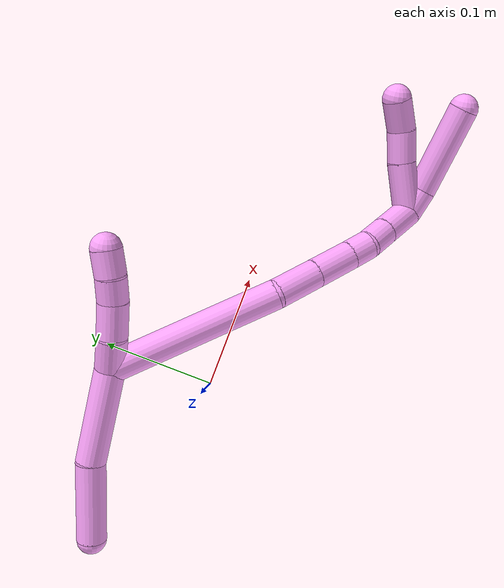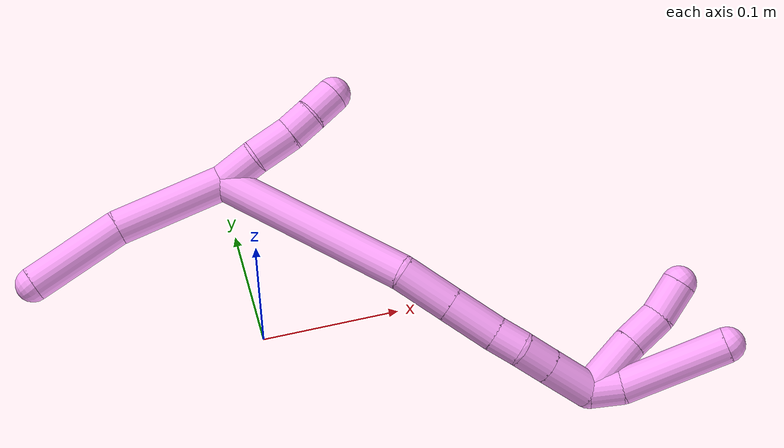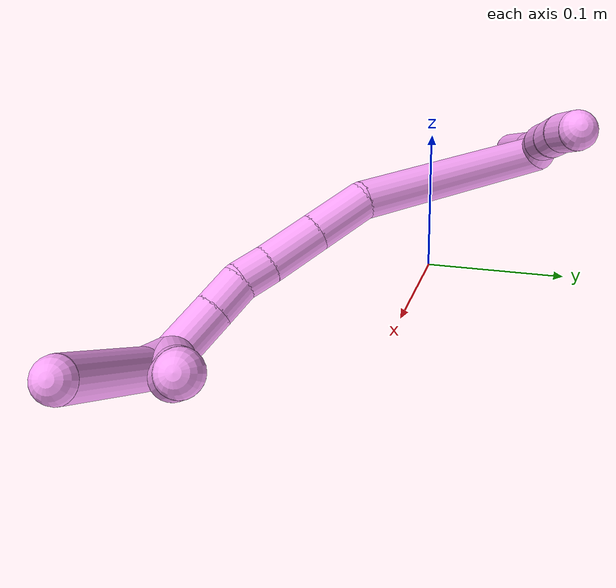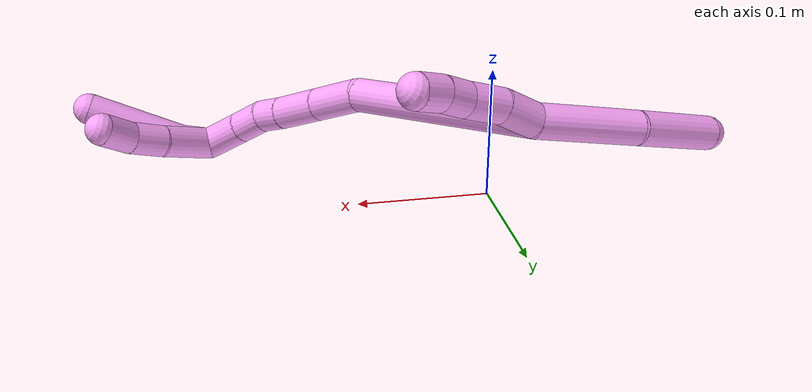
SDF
<sdf version="1.7">
 <world name="default">
  <model name="4">
   <static>0</static>
   <link name="4">
    <collision name="collision-cylinder-e_1_2_8">
     <pose>-0.01032 -0.007888 -0.038082 2.93736 -0.259387 -1.80968</pose>
     <geometry><cylinder><radius>0.0125</radius><length>0.080472</length></cylinder></geometry>
     <surface>
      <friction><ode><mu>1.16</mu><mu2>1.16</mu2><slip1>0</slip1><slip2>0</slip2></ode></friction>
      <contact><ode><kp>1e+06</kp><kd>1</kd><max_vel>0</max_vel><min_depth>0.001</min_depth></ode></contact>
     </surface>
    </collision>
    <visual name="visual-cylinder-e_1_2_8">
     <pose>-0.01032 -0.007888 -0.038082 2.93736 -0.259387 -1.80968</pose>
     <geometry><cylinder><radius>0.0125</radius><length>0.080472</length></cylinder></geometry>
     <material><ambient>1 0.65098 0.996078 1</ambient></material>
    </visual>
    <collision name="collision-cylinder-e_2_8_6">
     <pose>-0.022958 -0.024687 -0.109686 2.88177 -0.066734 -0.500274</pose>
     <geometry><cylinder><radius>0.0125</radius><length>0.069528</length></cylinder></geometry>
     <surface>
      <friction><ode><mu>1.16</mu><mu2>1.16</mu2><slip1>0</slip1><slip2>0</slip2></ode></friction>
      <contact><ode><kp>1e+06</kp><kd>1</kd><max_vel>0</max_vel><min_depth>0.001</min_depth></ode></contact>
     </surface>
    </collision>
    <visual name="visual-cylinder-e_2_8_6">
     <pose>-0.022958 -0.024687 -0.109686 2.88177 -0.066734 -0.500274</pose>
     <geometry><cylinder><radius>0.0125</radius><length>0.069528</length></cylinder></geometry>
     <material><ambient>1 0.65098 0.996078 1</ambient></material>
    </visual>
    <collision name="collision-cylinder-e_1_2_9">
     <pose>0.000276 -0.000278 0.014526 0.019121 0.018961 0.000181</pose>
     <geometry><cylinder><radius>0.0125</radius><length>0.029063</length></cylinder></geometry>
     <surface>
      <friction><ode><mu>1.16</mu><mu2>1.16</mu2><slip1>0</slip1><slip2>0</slip2></ode></friction>
      <contact><ode><kp>1e+06</kp><kd>1</kd><max_vel>0</max_vel><min_depth>0.001</min_depth></ode></contact>
     </surface>
    </collision>
    <visual name="visual-cylinder-e_1_2_9">
     <pose>0.000276 -0.000278 0.014526 0.019121 0.018961 0.000181</pose>
     <geometry><cylinder><radius>0.0125</radius><length>0.029063</length></cylinder></geometry>
     <material><ambient>1 0.65098 0.996078 1</ambient></material>
    </visual>
    <collision name="collision-cylinder-e_2_9_10">
     <pose>0.00154 0.002048 0.043388 -0.179643 0.067769 -0.006106</pose>
     <geometry><cylinder><radius>0.0125</radius><length>0.029207</length></cylinder></geometry>
     <surface>
      <friction><ode><mu>1.16</mu><mu2>1.16</mu2><slip1>0</slip1><slip2>0</slip2></ode></friction>
      <contact><ode><kp>1e+06</kp><kd>1</kd><max_vel>0</max_vel><min_depth>0.001</min_depth></ode></contact>
     </surface>
    </collision>
    <visual name="visual-cylinder-e_2_9_10">
     <pose>0.00154 0.002048 0.043388 -0.179643 0.067769 -0.006106</pose>
     <geometry><cylinder><radius>0.0125</radius><length>0.029207</length></cylinder></geometry>
     <material><ambient>1 0.65098 0.996078 1</ambient></material>
    </visual>
    <collision name="collision-cylinder-e_3_10_11">
     <pose>0.001978 0.006268 0.067711 -0.160508 -0.054407 0.004377</pose>
     <geometry><cylinder><radius>0.0125</radius><length>0.020266</length></cylinder></geometry>
     <surface>
      <friction><ode><mu>1.16</mu><mu2>1.16</mu2><slip1>0</slip1><slip2>0</slip2></ode></friction>
      <contact><ode><kp>1e+06</kp><kd>1</kd><max_vel>0</max_vel><min_depth>0.001</min_depth></ode></contact>
     </surface>
    </collision>
    <visual name="visual-cylinder-e_3_10_11">
     <pose>0.001978 0.006268 0.067711 -0.160508 -0.054407 0.004377</pose>
     <geometry><cylinder><radius>0.0125</radius><length>0.020266</length></cylinder></geometry>
     <material><ambient>1 0.65098 0.996078 1</ambient></material>
    </visual>
    <collision name="collision-cylinder-e_4_11_5">
     <pose>0.000551 0.011108 0.087898 -0.306058 -0.081726 0.012612</pose>
     <geometry><cylinder><radius>0.0125</radius><length>0.021464</length></cylinder></geometry>
     <surface>
      <friction><ode><mu>1.16</mu><mu2>1.16</mu2><slip1>0</slip1><slip2>0</slip2></ode></friction>
      <contact><ode><kp>1e+06</kp><kd>1</kd><max_vel>0</max_vel><min_depth>0.001</min_depth></ode></contact>
     </surface>
    </collision>
    <visual name="visual-cylinder-e_4_11_5">
     <pose>0.000551 0.011108 0.087898 -0.306058 -0.081726 0.012612</pose>
     <geometry><cylinder><radius>0.0125</radius><length>0.021464</length></cylinder></geometry>
     <material><ambient>1 0.65098 0.996078 1</ambient></material>
    </visual>
    <collision name="collision-cylinder-e_1_2_12">
     <pose>0.063804 -0.015596 0.030914 0.467227 1.07359 0.281337</pose>
     <geometry><cylinder><radius>0.0125</radius><length>0.145188</length></cylinder></geometry>
     <surface>
      <friction><ode><mu>1.16</mu><mu2>1.16</mu2><slip1>0</slip1><slip2>0</slip2></ode></friction>
      <contact><ode><kp>1e+06</kp><kd>1</kd><max_vel>0</max_vel><min_depth>0.001</min_depth></ode></contact>
     </surface>
    </collision>
    <visual name="visual-cylinder-e_1_2_12">
     <pose>0.063804 -0.015596 0.030914 0.467227 1.07359 0.281337</pose>
     <geometry><cylinder><radius>0.0125</radius><length>0.145188</length></cylinder></geometry>
     <material><ambient>1 0.65098 0.996078 1</ambient></material>
    </visual>
    <collision name="collision-cylinder-e_2_12_13">
     <pose>0.146154 -0.030087 0.06773 -0.185097 1.25772 -0.134816</pose>
     <geometry><cylinder><radius>0.0125</radius><length>0.038987</length></cylinder></geometry>
     <surface>
      <friction><ode><mu>1.16</mu><mu2>1.16</mu2><slip1>0</slip1><slip2>0</slip2></ode></friction>
      <contact><ode><kp>1e+06</kp><kd>1</kd><max_vel>0</max_vel><min_depth>0.001</min_depth></ode></contact>
     </surface>
    </collision>
    <visual name="visual-cylinder-e_2_12_13">
     <pose>0.146154 -0.030087 0.06773 -0.185097 1.25772 -0.134816</pose>
     <geometry><cylinder><radius>0.0125</radius><length>0.038987</length></cylinder></geometry>
     <material><ambient>1 0.65098 0.996078 1</ambient></material>
    </visual>
    <collision name="collision-cylinder-e_3_13_14">
     <pose>0.182083 -0.027908 0.079238 -0.189219 1.25347 -0.137214</pose>
     <geometry><cylinder><radius>0.0125</radius><length>0.036593</length></cylinder></geometry>
     <surface>
      <friction><ode><mu>1.16</mu><mu2>1.16</mu2><slip1>0</slip1><slip2>0</slip2></ode></friction>
      <contact><ode><kp>1e+06</kp><kd>1</kd><max_vel>0</max_vel><min_depth>0.001</min_depth></ode></contact>
     </surface>
    </collision>
    <visual name="visual-cylinder-e_3_13_14">
     <pose>0.182083 -0.027908 0.079238 -0.189219 1.25347 -0.137214</pose>
     <geometry><cylinder><radius>0.0125</radius><length>0.036593</length></cylinder></geometry>
     <material><ambient>1 0.65098 0.996078 1</ambient></material>
    </visual>
    <collision name="collision-cylinder-e_4_14_15">
     <pose>0.209027 -0.026605 0.08852 -0.062182 1.20317 -0.042693</pose>
     <geometry><cylinder><radius>0.0125</radius><length>0.020492</length></cylinder></geometry>
     <surface>
      <friction><ode><mu>1.16</mu><mu2>1.16</mu2><slip1>0</slip1><slip2>0</slip2></ode></friction>
      <contact><ode><kp>1e+06</kp><kd>1</kd><max_vel>0</max_vel><min_depth>0.001</min_depth></ode></contact>
     </surface>
    </collision>
    <visual name="visual-cylinder-e_4_14_15">
     <pose>0.209027 -0.026605 0.08852 -0.062182 1.20317 -0.042693</pose>
     <geometry><cylinder><radius>0.0125</radius><length>0.020492</length></cylinder></geometry>
     <material><ambient>1 0.65098 0.996078 1</ambient></material>
    </visual>
    <collision name="collision-cylinder-e_5_15_16">
     <pose>0.229212 -0.022968 0.095627 -0.782114 1.14358 -0.518665</pose>
     <geometry><cylinder><radius>0.0125</radius><length>0.023345</length></cylinder></geometry>
     <surface>
      <friction><ode><mu>1.16</mu><mu2>1.16</mu2><slip1>0</slip1><slip2>0</slip2></ode></friction>
      <contact><ode><kp>1e+06</kp><kd>1</kd><max_vel>0</max_vel><min_depth>0.001</min_depth></ode></contact>
     </surface>
    </collision>
    <visual name="visual-cylinder-e_5_15_16">
     <pose>0.229212 -0.022968 0.095627 -0.782114 1.14358 -0.518665</pose>
     <geometry><cylinder><radius>0.0125</radius><length>0.023345</length></cylinder></geometry>
     <material><ambient>1 0.65098 0.996078 1</ambient></material>
    </visual>
    <collision name="collision-cylinder-e_6_16_1">
     <pose>0.255932 -0.014465 0.104362 -0.7652 1.14224 -0.506078</pose>
     <geometry><cylinder><radius>0.0125</radius><length>0.035396</length></cylinder></geometry>
     <surface>
      <friction><ode><mu>1.16</mu><mu2>1.16</mu2><slip1>0</slip1><slip2>0</slip2></ode></friction>
      <contact><ode><kp>1e+06</kp><kd>1</kd><max_vel>0</max_vel><min_depth>0.001</min_depth></ode></contact>
     </surface>
    </collision>
    <visual name="visual-cylinder-e_6_16_1">
     <pose>0.255932 -0.014465 0.104362 -0.7652 1.14224 -0.506078</pose>
     <geometry><cylinder><radius>0.0125</radius><length>0.035396</length></cylinder></geometry>
     <material><ambient>1 0.65098 0.996078 1</ambient></material>
    </visual>
    <collision name="collision-cylinder-e_1_1_17">
     <pose>0.268753 -0.002547 0.130731 -0.313255 -0.146928 0.023244</pose>
     <geometry><cylinder><radius>0.0125</radius><length>0.044766</length></cylinder></geometry>
     <surface>
      <friction><ode><mu>1.16</mu><mu2>1.16</mu2><slip1>0</slip1><slip2>0</slip2></ode></friction>
      <contact><ode><kp>1e+06</kp><kd>1</kd><max_vel>0</max_vel><min_depth>0.001</min_depth></ode></contact>
     </surface>
    </collision>
    <visual name="visual-cylinder-e_1_1_17">
     <pose>0.268753 -0.002547 0.130731 -0.313255 -0.146928 0.023244</pose>
     <geometry><cylinder><radius>0.0125</radius><length>0.044766</length></cylinder></geometry>
     <material><ambient>1 0.65098 0.996078 1</ambient></material>
    </visual>
    <collision name="collision-cylinder-e_2_17_18">
     <pose>0.264617 0.007532 0.165197 -0.238349 -0.062174 0.007447</pose>
     <geometry><cylinder><radius>0.0125</radius><length>0.027638</length></cylinder></geometry>
     <surface>
      <friction><ode><mu>1.16</mu><mu2>1.16</mu2><slip1>0</slip1><slip2>0</slip2></ode></friction>
      <contact><ode><kp>1e+06</kp><kd>1</kd><max_vel>0</max_vel><min_depth>0.001</min_depth></ode></contact>
     </surface>
    </collision>
    <visual name="visual-cylinder-e_2_17_18">
     <pose>0.264617 0.007532 0.165197 -0.238349 -0.062174 0.007447</pose>
     <geometry><cylinder><radius>0.0125</radius><length>0.027638</length></cylinder></geometry>
     <material><ambient>1 0.65098 0.996078 1</ambient></material>
    </visual>
    <collision name="collision-cylinder-e_3_18_4">
     <pose>0.259396 0.012753 0.191542 -0.15066 -0.321728 0.024492</pose>
     <geometry><cylinder><radius>0.0125</radius><length>0.027596</length></cylinder></geometry>
     <surface>
      <friction><ode><mu>1.16</mu><mu2>1.16</mu2><slip1>0</slip1><slip2>0</slip2></ode></friction>
      <contact><ode><kp>1e+06</kp><kd>1</kd><max_vel>0</max_vel><min_depth>0.001</min_depth></ode></contact>
     </surface>
    </collision>
    <visual name="visual-cylinder-e_3_18_4">
     <pose>0.259396 0.012753 0.191542 -0.15066 -0.321728 0.024492</pose>
     <geometry><cylinder><radius>0.0125</radius><length>0.027596</length></cylinder></geometry>
     <material><ambient>1 0.65098 0.996078 1</ambient></material>
    </visual>
    <collision name="collision-cylinder-e_1_1_19">
     <pose>0.278123 -0.008945 0.11959 -0.042837 0.550235 -0.012094</pose>
     <geometry><cylinder><radius>0.0125</radius><length>0.023306</length></cylinder></geometry>
     <surface>
      <friction><ode><mu>1.16</mu><mu2>1.16</mu2><slip1>0</slip1><slip2>0</slip2></ode></friction>
      <contact><ode><kp>1e+06</kp><kd>1</kd><max_vel>0</max_vel><min_depth>0.001</min_depth></ode></contact>
     </surface>
    </collision>
    <visual name="visual-cylinder-e_1_1_19">
     <pose>0.278123 -0.008945 0.11959 -0.042837 0.550235 -0.012094</pose>
     <geometry><cylinder><radius>0.0125</radius><length>0.023306</length></cylinder></geometry>
     <material><ambient>1 0.65098 0.996078 1</ambient></material>
    </visual>
    <collision name="collision-cylinder-e_2_19_3">
     <pose>0.294302 -0.012004 0.166347 0.094308 0.266135 0.012633</pose>
     <geometry><cylinder><radius>0.0125</radius><length>0.076694</length></cylinder></geometry>
     <surface>
      <friction><ode><mu>1.16</mu><mu2>1.16</mu2><slip1>0</slip1><slip2>0</slip2></ode></friction>
      <contact><ode><kp>1e+06</kp><kd>1</kd><max_vel>0</max_vel><min_depth>0.001</min_depth></ode></contact>
     </surface>
    </collision>
    <visual name="visual-cylinder-e_2_19_3">
     <pose>0.294302 -0.012004 0.166347 0.094308 0.266135 0.012633</pose>
     <geometry><cylinder><radius>0.0125</radius><length>0.076694</length></cylinder></geometry>
     <material><ambient>1 0.65098 0.996078 1</ambient></material>
    </visual>
    <collision name="collision-sphere-3">
     <pose>0.304387 -0.015488 0.203179 0 -0 0</pose>
     <geometry><sphere><radius>0.0125</radius></sphere></geometry>
     <surface>
      <friction><ode><mu>1.16</mu><mu2>1.16</mu2><slip1>0</slip1><slip2>0</slip2></ode></friction>
      <contact><ode><kp>1e+06</kp><kd>1</kd><max_vel>0</max_vel><min_depth>0.001</min_depth></ode></contact>
     </surface>
    </collision>
    <visual name="visual-sphere-3">
     <pose>0.304387 -0.015488 0.203179 0 -0 0</pose>
     <geometry><sphere><radius>0.0125</radius></sphere></geometry>
     <material><ambient>1 0.65098 0.996078 1</ambient></material>
    </visual>
    <collision name="collision-sphere-19">
     <pose>0.284216 -0.00852 0.129514 0 -0 0</pose>
     <geometry><sphere><radius>0.0125</radius></sphere></geometry>
     <surface>
      <friction><ode><mu>1.16</mu><mu2>1.16</mu2><slip1>0</slip1><slip2>0</slip2></ode></friction>
      <contact><ode><kp>1e+06</kp><kd>1</kd><max_vel>0</max_vel><min_depth>0.001</min_depth></ode></contact>
     </surface>
    </collision>
    <visual name="visual-sphere-19">
     <pose>0.284216 -0.00852 0.129514 0 -0 0</pose>
     <geometry><sphere><radius>0.0125</radius></sphere></geometry>
     <material><ambient>1 0.65098 0.996078 1</ambient></material>
    </visual>
    <collision name="collision-sphere-11">
     <pose>0.001427 0.007885 0.077699 0 -0 0</pose>
     <geometry><sphere><radius>0.0125</radius></sphere></geometry>
     <surface>
      <friction><ode><mu>1.16</mu><mu2>1.16</mu2><slip1>0</slip1><slip2>0</slip2></ode></friction>
      <contact><ode><kp>1e+06</kp><kd>1</kd><max_vel>0</max_vel><min_depth>0.001</min_depth></ode></contact>
     </surface>
    </collision>
    <visual name="visual-sphere-11">
     <pose>0.001427 0.007885 0.077699 0 -0 0</pose>
     <geometry><sphere><radius>0.0125</radius></sphere></geometry>
     <material><ambient>1 0.65098 0.996078 1</ambient></material>
    </visual>
    <collision name="collision-sphere-10">
     <pose>0.002529 0.004651 0.057723 0 -0 0</pose>
     <geometry><sphere><radius>0.0125</radius></sphere></geometry>
     <surface>
      <friction><ode><mu>1.16</mu><mu2>1.16</mu2><slip1>0</slip1><slip2>0</slip2></ode></friction>
      <contact><ode><kp>1e+06</kp><kd>1</kd><max_vel>0</max_vel><min_depth>0.001</min_depth></ode></contact>
     </surface>
    </collision>
    <visual name="visual-sphere-10">
     <pose>0.002529 0.004651 0.057723 0 -0 0</pose>
     <geometry><sphere><radius>0.0125</radius></sphere></geometry>
     <material><ambient>1 0.65098 0.996078 1</ambient></material>
    </visual>
    <collision name="collision-sphere-6">
     <pose>-0.025277 -0.033598 -0.143208 0 -0 0</pose>
     <geometry><sphere><radius>0.0125</radius></sphere></geometry>
     <surface>
      <friction><ode><mu>1.16</mu><mu2>1.16</mu2><slip1>0</slip1><slip2>0</slip2></ode></friction>
      <contact><ode><kp>1e+06</kp><kd>1</kd><max_vel>0</max_vel><min_depth>0.001</min_depth></ode></contact>
     </surface>
    </collision>
    <visual name="visual-sphere-6">
     <pose>-0.025277 -0.033598 -0.143208 0 -0 0</pose>
     <geometry><sphere><radius>0.0125</radius></sphere></geometry>
     <material><ambient>1 0.65098 0.996078 1</ambient></material>
    </visual>
    <collision name="collision-sphere-9">
     <pose>0.000551 -0.000556 0.029052 0 -0 0</pose>
     <geometry><sphere><radius>0.0125</radius></sphere></geometry>
     <surface>
      <friction><ode><mu>1.16</mu><mu2>1.16</mu2><slip1>0</slip1><slip2>0</slip2></ode></friction>
      <contact><ode><kp>1e+06</kp><kd>1</kd><max_vel>0</max_vel><min_depth>0.001</min_depth></ode></contact>
     </surface>
    </collision>
    <visual name="visual-sphere-9">
     <pose>0.000551 -0.000556 0.029052 0 -0 0</pose>
     <geometry><sphere><radius>0.0125</radius></sphere></geometry>
     <material><ambient>1 0.65098 0.996078 1</ambient></material>
    </visual>
    <collision name="collision-sphere-2">
     <geometry><sphere><radius>0.0125</radius></sphere></geometry>
     <surface>
      <friction><ode><mu>1.16</mu><mu2>1.16</mu2><slip1>0</slip1><slip2>0</slip2></ode></friction>
      <contact><ode><kp>1e+06</kp><kd>1</kd><max_vel>0</max_vel><min_depth>0.001</min_depth></ode></contact>
     </surface>
    </collision>
    <visual name="visual-sphere-2">
     <geometry><sphere><radius>0.0125</radius></sphere></geometry>
     <material><ambient>1 0.65098 0.996078 1</ambient></material>
    </visual>
    <collision name="collision-sphere-8">
     <pose>-0.02064 -0.015775 -0.076163 0 -0 0</pose>
     <geometry><sphere><radius>0.0125</radius></sphere></geometry>
     <surface>
      <friction><ode><mu>1.16</mu><mu2>1.16</mu2><slip1>0</slip1><slip2>0</slip2></ode></friction>
      <contact><ode><kp>1e+06</kp><kd>1</kd><max_vel>0</max_vel><min_depth>0.001</min_depth></ode></contact>
     </surface>
    </collision>
    <visual name="visual-sphere-8">
     <pose>-0.02064 -0.015775 -0.076163 0 -0 0</pose>
     <geometry><sphere><radius>0.0125</radius></sphere></geometry>
     <material><ambient>1 0.65098 0.996078 1</ambient></material>
    </visual>
    <collision name="collision-sphere-5">
     <pose>-0.000325 0.014331 0.098098 0 -0 0</pose>
     <geometry><sphere><radius>0.0125</radius></sphere></geometry>
     <surface>
      <friction><ode><mu>1.16</mu><mu2>1.16</mu2><slip1>0</slip1><slip2>0</slip2></ode></friction>
      <contact><ode><kp>1e+06</kp><kd>1</kd><max_vel>0</max_vel><min_depth>0.001</min_depth></ode></contact>
     </surface>
    </collision>
    <visual name="visual-sphere-5">
     <pose>-0.000325 0.014331 0.098098 0 -0 0</pose>
     <geometry><sphere><radius>0.0125</radius></sphere></geometry>
     <material><ambient>1 0.65098 0.996078 1</ambient></material>
    </visual>
    <collision name="collision-sphere-12">
     <pose>0.127608 -0.031192 0.061829 0 -0 0</pose>
     <geometry><sphere><radius>0.0125</radius></sphere></geometry>
     <surface>
      <friction><ode><mu>1.16</mu><mu2>1.16</mu2><slip1>0</slip1><slip2>0</slip2></ode></friction>
      <contact><ode><kp>1e+06</kp><kd>1</kd><max_vel>0</max_vel><min_depth>0.001</min_depth></ode></contact>
     </surface>
    </collision>
    <visual name="visual-sphere-12">
     <pose>0.127608 -0.031192 0.061829 0 -0 0</pose>
     <geometry><sphere><radius>0.0125</radius></sphere></geometry>
     <material><ambient>1 0.65098 0.996078 1</ambient></material>
    </visual>
    <collision name="collision-sphere-13">
     <pose>0.1647 -0.028982 0.073631 0 -0 0</pose>
     <geometry><sphere><radius>0.0125</radius></sphere></geometry>
     <surface>
      <friction><ode><mu>1.16</mu><mu2>1.16</mu2><slip1>0</slip1><slip2>0</slip2></ode></friction>
      <contact><ode><kp>1e+06</kp><kd>1</kd><max_vel>0</max_vel><min_depth>0.001</min_depth></ode></contact>
     </surface>
    </collision>
    <visual name="visual-sphere-13">
     <pose>0.1647 -0.028982 0.073631 0 -0 0</pose>
     <geometry><sphere><radius>0.0125</radius></sphere></geometry>
     <material><ambient>1 0.65098 0.996078 1</ambient></material>
    </visual>
    <collision name="collision-sphere-14">
     <pose>0.199466 -0.026834 0.084845 0 -0 0</pose>
     <geometry><sphere><radius>0.0125</radius></sphere></geometry>
     <surface>
      <friction><ode><mu>1.16</mu><mu2>1.16</mu2><slip1>0</slip1><slip2>0</slip2></ode></friction>
      <contact><ode><kp>1e+06</kp><kd>1</kd><max_vel>0</max_vel><min_depth>0.001</min_depth></ode></contact>
     </surface>
    </collision>
    <visual name="visual-sphere-14">
     <pose>0.199466 -0.026834 0.084845 0 -0 0</pose>
     <geometry><sphere><radius>0.0125</radius></sphere></geometry>
     <material><ambient>1 0.65098 0.996078 1</ambient></material>
    </visual>
    <collision name="collision-sphere-15">
     <pose>0.218588 -0.026376 0.092196 0 -0 0</pose>
     <geometry><sphere><radius>0.0125</radius></sphere></geometry>
     <surface>
      <friction><ode><mu>1.16</mu><mu2>1.16</mu2><slip1>0</slip1><slip2>0</slip2></ode></friction>
      <contact><ode><kp>1e+06</kp><kd>1</kd><max_vel>0</max_vel><min_depth>0.001</min_depth></ode></contact>
     </surface>
    </collision>
    <visual name="visual-sphere-15">
     <pose>0.218588 -0.026376 0.092196 0 -0 0</pose>
     <geometry><sphere><radius>0.0125</radius></sphere></geometry>
     <material><ambient>1 0.65098 0.996078 1</ambient></material>
    </visual>
    <collision name="collision-sphere-16">
     <pose>0.239835 -0.019559 0.099058 0 -0 0</pose>
     <geometry><sphere><radius>0.0125</radius></sphere></geometry>
     <surface>
      <friction><ode><mu>1.16</mu><mu2>1.16</mu2><slip1>0</slip1><slip2>0</slip2></ode></friction>
      <contact><ode><kp>1e+06</kp><kd>1</kd><max_vel>0</max_vel><min_depth>0.001</min_depth></ode></contact>
     </surface>
    </collision>
    <visual name="visual-sphere-16">
     <pose>0.239835 -0.019559 0.099058 0 -0 0</pose>
     <geometry><sphere><radius>0.0125</radius></sphere></geometry>
     <material><ambient>1 0.65098 0.996078 1</ambient></material>
    </visual>
    <collision name="collision-sphere-1">
     <pose>0.27203 -0.009371 0.109666 0 -0 0</pose>
     <geometry><sphere><radius>0.0125</radius></sphere></geometry>
     <surface>
      <friction><ode><mu>1.16</mu><mu2>1.16</mu2><slip1>0</slip1><slip2>0</slip2></ode></friction>
      <contact><ode><kp>1e+06</kp><kd>1</kd><max_vel>0</max_vel><min_depth>0.001</min_depth></ode></contact>
     </surface>
    </collision>
    <visual name="visual-sphere-1">
     <pose>0.27203 -0.009371 0.109666 0 -0 0</pose>
     <geometry><sphere><radius>0.0125</radius></sphere></geometry>
     <material><ambient>1 0.65098 0.996078 1</ambient></material>
    </visual>
    <collision name="collision-sphere-18">
     <pose>0.263759 0.010788 0.1786 0 -0 0</pose>
     <geometry><sphere><radius>0.0125</radius></sphere></geometry>
     <surface>
      <friction><ode><mu>1.16</mu><mu2>1.16</mu2><slip1>0</slip1><slip2>0</slip2></ode></friction>
      <contact><ode><kp>1e+06</kp><kd>1</kd><max_vel>0</max_vel><min_depth>0.001</min_depth></ode></contact>
     </surface>
    </collision>
    <visual name="visual-sphere-18">
     <pose>0.263759 0.010788 0.1786 0 -0 0</pose>
     <geometry><sphere><radius>0.0125</radius></sphere></geometry>
     <material><ambient>1 0.65098 0.996078 1</ambient></material>
    </visual>
    <collision name="collision-sphere-17">
     <pose>0.265476 0.004276 0.151795 0 -0 0</pose>
     <geometry><sphere><radius>0.0125</radius></sphere></geometry>
     <surface>
      <friction><ode><mu>1.16</mu><mu2>1.16</mu2><slip1>0</slip1><slip2>0</slip2></ode></friction>
      <contact><ode><kp>1e+06</kp><kd>1</kd><max_vel>0</max_vel><min_depth>0.001</min_depth></ode></contact>
     </surface>
    </collision>
    <visual name="visual-sphere-17">
     <pose>0.265476 0.004276 0.151795 0 -0 0</pose>
     <geometry><sphere><radius>0.0125</radius></sphere></geometry>
     <material><ambient>1 0.65098 0.996078 1</ambient></material>
    </visual>
    <collision name="collision-sphere-4">
     <pose>0.255033 0.014718 0.204483 0 -0 0</pose>
     <geometry><sphere><radius>0.0125</radius></sphere></geometry>
     <surface>
      <friction><ode><mu>1.16</mu><mu2>1.16</mu2><slip1>0</slip1><slip2>0</slip2></ode></friction>
      <contact><ode><kp>1e+06</kp><kd>1</kd><max_vel>0</max_vel><min_depth>0.001</min_depth></ode></contact>
     </surface>
    </collision>
    <visual name="visual-sphere-4">
     <pose>0.255033 0.014718 0.204483 0 -0 0</pose>
     <geometry><sphere><radius>0.0125</radius></sphere></geometry>
     <material><ambient>1 0.65098 0.996078 1</ambient></material>
    </visual>
    <inertial>
     <pose>0.124736 -0.011559 0.0577 0 -0 0</pose>
     <mass>0.75</mass>
     <inertia>
      <ixx>0.000203</ixx>
      <ixy>0</ixy>
      <ixz>0</ixz>
      <iyy>0.0003</iyy>
      <iyz>0</iyz>
      <izz>-0.000155</izz>
     </inertia>
    </inertial>
   </link>
   <pose>-0.007894 0.074716 0.089791 -0.976848 0.531163 -1.02012</pose>
  </model>
 </world>
</sdf>
